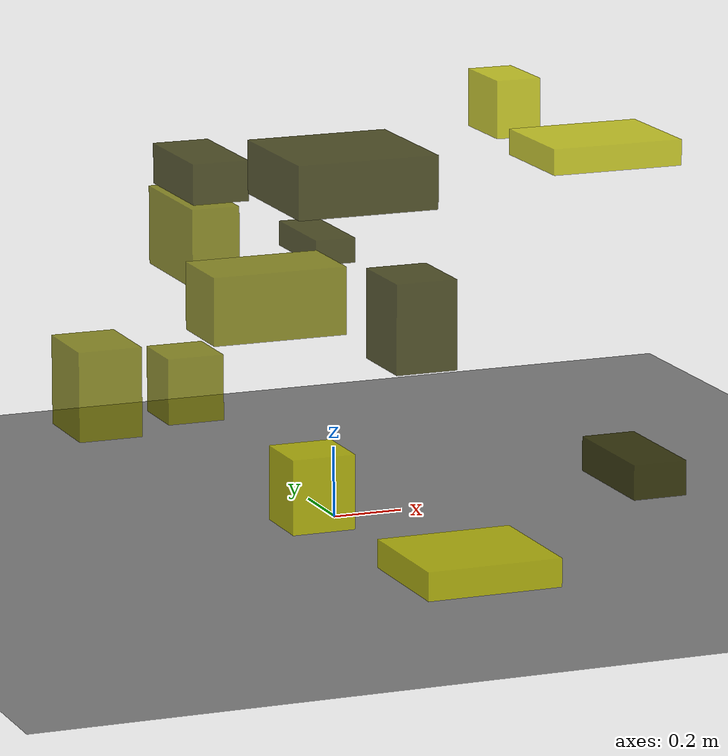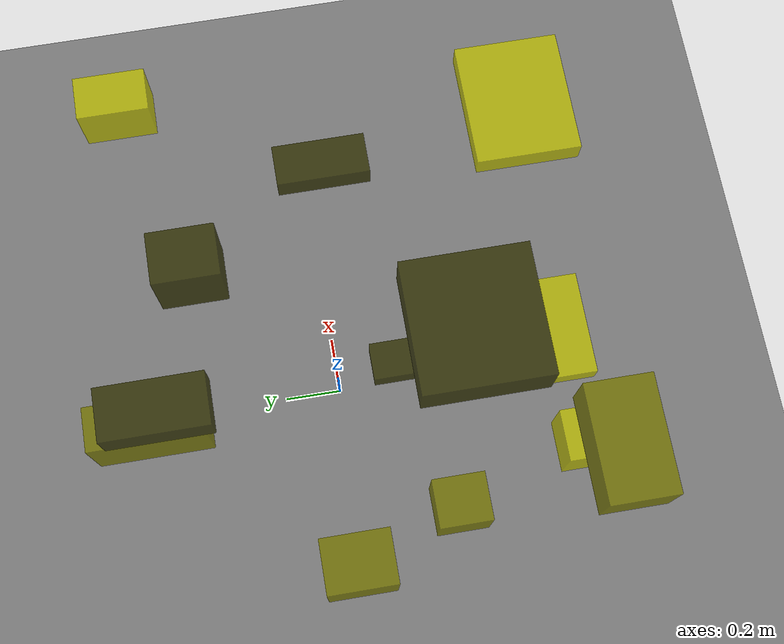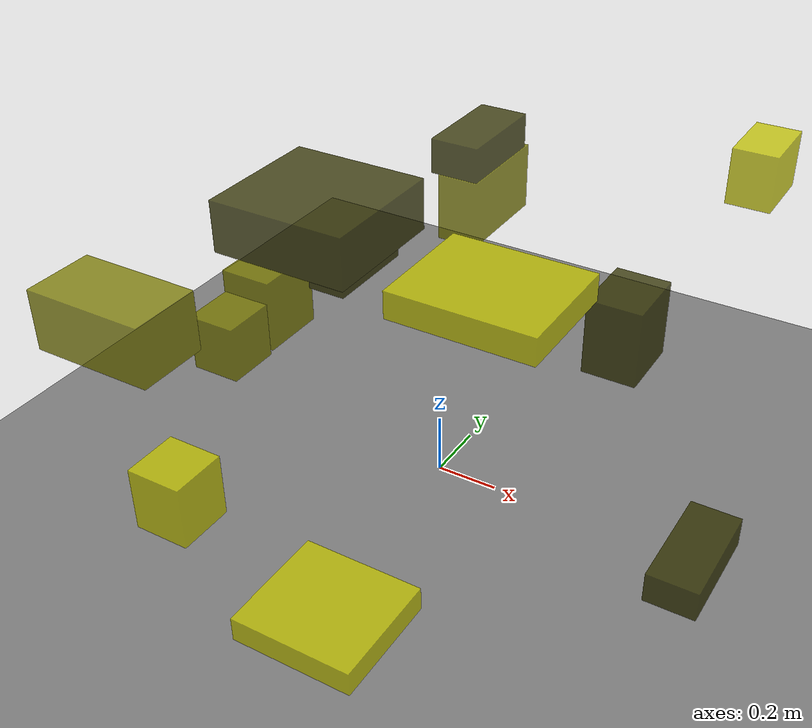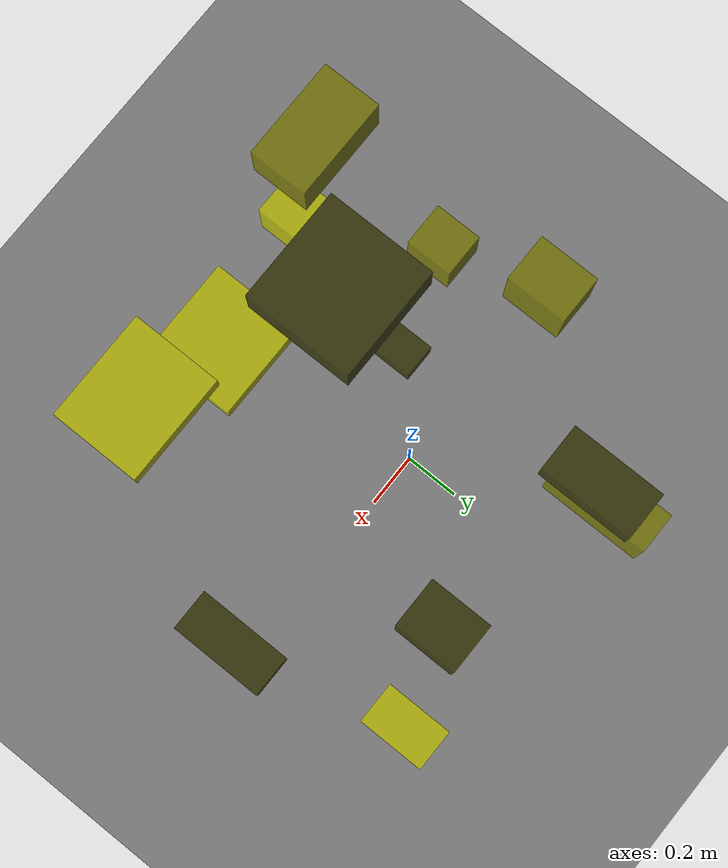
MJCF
<?xml version="1.0"?>
<mujoco model="obstacle_scene">
  <compiler angle="radian" coordinate="local"/>
  <option timestep="0.001" gravity="0 0 -9.81"/>

  <asset>
    <material name="obstacle_mat" rgba="0.8 0.8 0.0 0.8"/>
    <material name="ground_mat" rgba="0.5 0.5 0.5 1"/>
  </asset>

  <worldbody>
    <!-- Ground plane -->
    <geom name="ground" type="plane" size="3 3 0.1" material="ground_mat"/>

    <!-- Obstacles -->
    <body name="obstacle_0" pos="-0.141654 -0.234698 0.847695">
      <geom name="obs_0" type="box" size="0.056164 0.139370 0.034166" rgba="0.2 0.2 0.0 0.8"/>
    </body>
    <body name="obstacle_1" pos="-0.189191 0.612132 0.698402">
      <geom name="obs_1" type="box" size="0.070307 0.182800 0.114005" rgba="0.5 0.5 0.0 0.8"/>
    </body>
    <body name="obstacle_2" pos="0.504066 -0.636825 1.136816">
      <geom name="obs_2" type="box" size="0.185338 0.152664 0.035292" rgba="0.8 0.8 0.0 0.8"/>
    </body>
    <body name="obstacle_3" pos="0.420097 0.457848 0.432136">
      <geom name="obs_3" type="box" size="0.093242 0.118400 0.133899" rgba="0.2 0.2 0.0 0.8"/>
    </body>
    <body name="obstacle_4" pos="-0.555266 -0.315845 0.507675">
      <geom name="obs_4" type="box" size="0.078608 0.085728 0.090320" rgba="0.5 0.5 0.0 0.8"/>
    </body>
    <body name="obstacle_5" pos="0.747533 0.551856 1.028673">
      <geom name="obs_5" type="box" size="0.066632 0.107346 0.084604" rgba="0.8 0.8 0.0 0.8"/>
    </body>
    <body name="obstacle_6" pos="-0.185151 0.564071 0.891595">
      <geom name="obs_6" type="box" size="0.083010 0.166759 0.058381" rgba="0.2 0.2 0.0 0.8"/>
    </body>
    <body name="obstacle_7" pos="-0.505291 -0.801028 0.841410">
      <geom name="obs_7" type="box" size="0.183554 0.106849 0.090692" rgba="0.5 0.5 0.0 0.8"/>
    </body>
    <body name="obstacle_8" pos="-0.376901 -0.800034 0.318235">
      <geom name="obs_8" type="box" size="0.087695 0.088015 0.101474" rgba="0.8 0.8 0.0 0.8"/>
    </body>
    <body name="obstacle_9" pos="0.888658 -0.069143 0.077928">
      <geom name="obs_9" type="box" size="0.080196 0.179948 0.050546" rgba="0.2 0.2 0.0 0.8"/>
    </body>
    <body name="obstacle_10" pos="-0.685457 0.037241 0.431428">
      <geom name="obs_10" type="box" size="0.090490 0.115665 0.125824" rgba="0.5 0.5 0.0 0.8"/>
    </body>
    <body name="obstacle_11" pos="0.088676 -0.765239 0.053739">
      <geom name="obs_11" type="box" size="0.192758 0.180061 0.040027" rgba="0.8 0.8 0.0 0.8"/>
    </body>
    <body name="obstacle_12" pos="-0.130690 -0.396697 1.064094">
      <geom name="obs_12" type="box" size="0.199603 0.192219 0.074024" rgba="0.2 0.2 0.0 0.8"/>
    </body>
  </worldbody>
</mujoco>
